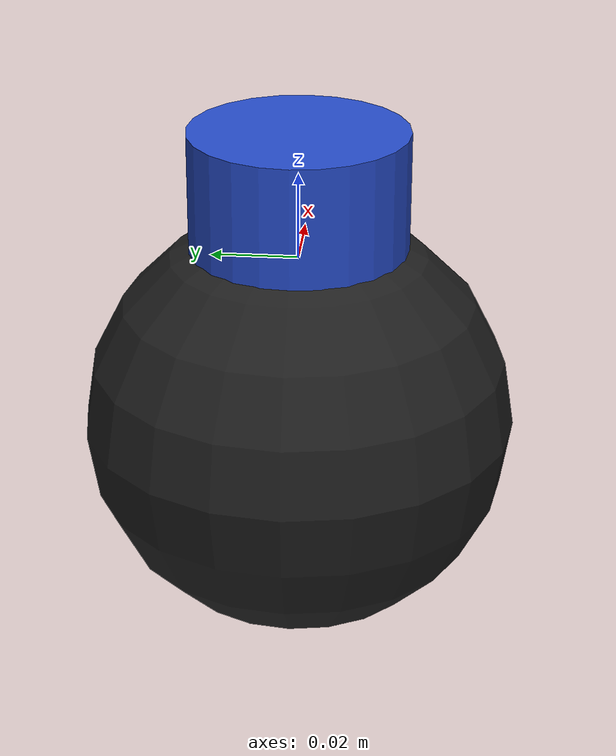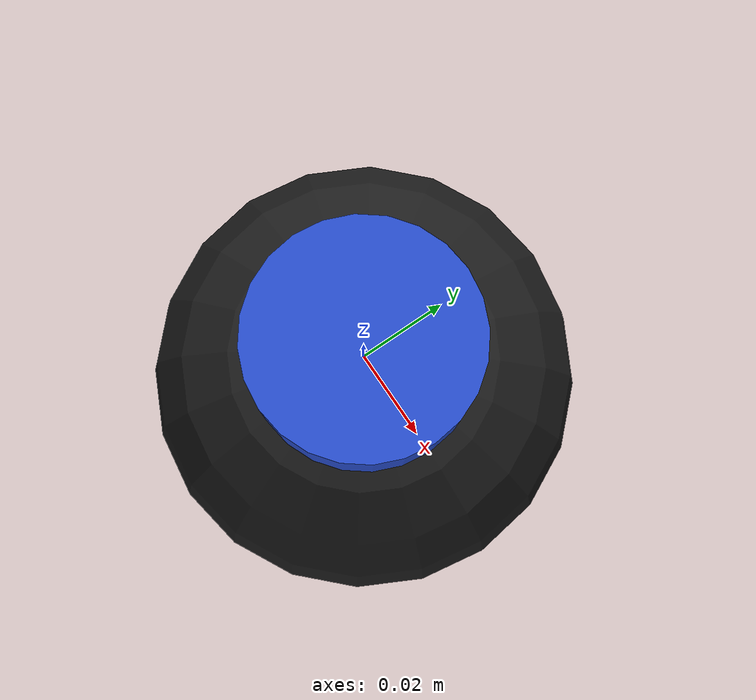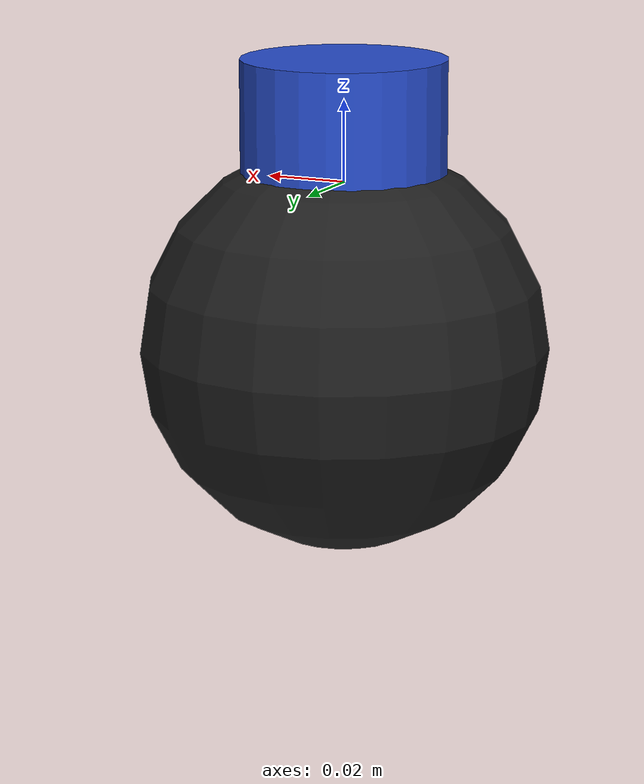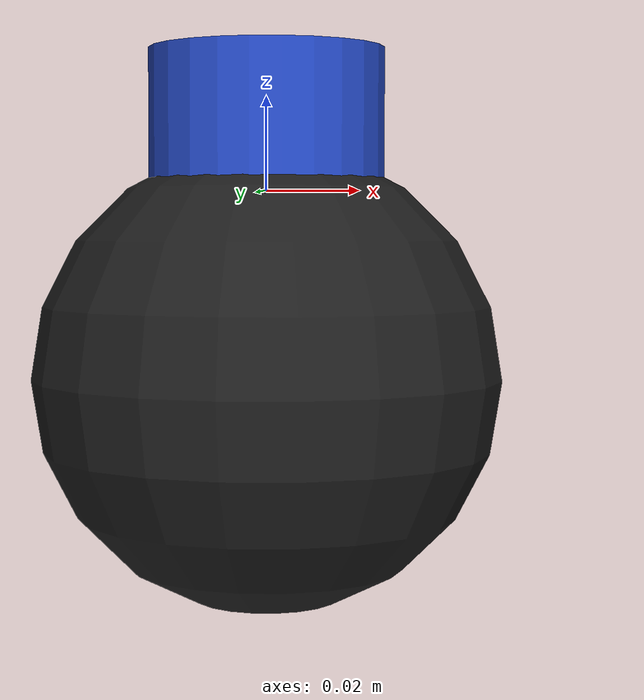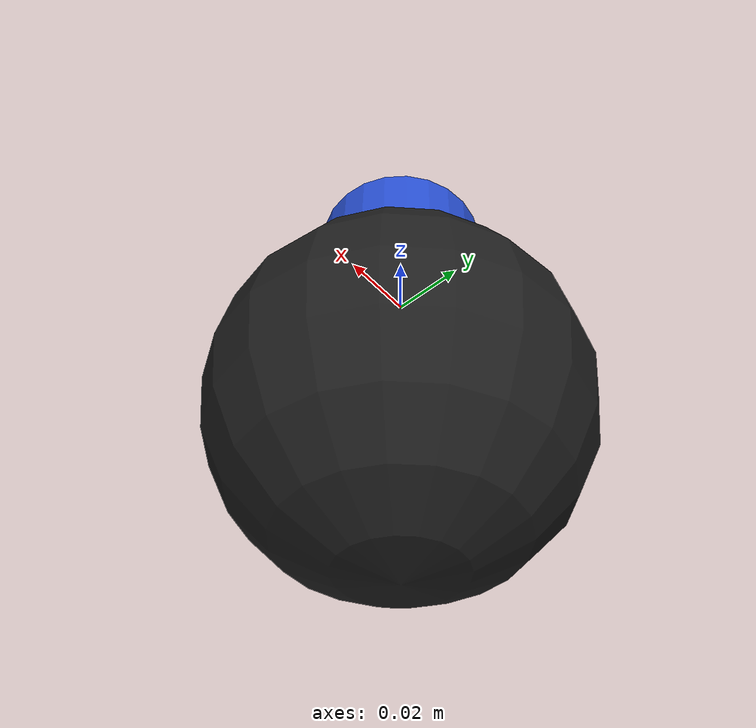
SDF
<?xml version='1.0'?>
<sdf version='1.6'>
  <model name='Head_Camera'>
    <link name='link_0'>
      <pose frame=''>0 0 -0.04 0 -0 0</pose>
      <inertial>
        <mass>0.01</mass>
        <inertia>
          <ixx>0</ixx>
          <ixy>0</ixy>
          <ixz>0</ixz>
          <iyy>0</iyy>
          <iyz>0</iyz>
          <izz>0</izz>
        </inertia>
        <pose frame=''>0 0 0 0 -0 0</pose>
      </inertial>
      <self_collide>0</self_collide>
      <kinematic>0</kinematic>
      <visual name='visual'>
        <pose frame=''>0 0 0 0 -0 0</pose>
        <geometry>
          <sphere>
            <radius>0.05</radius>
          </sphere>
        </geometry>
        <material>
          <lighting>1</lighting>
          <script>
            <uri>file://media/materials/scripts/gazebo.material</uri>
            <name>Gazebo/Black</name>
          </script>
          <shader type='pixel'>
            <normal_map>__default__</normal_map>
          </shader>
          <ambient>0 0 0 1</ambient>
          <diffuse>0 0 0 1</diffuse>
          <specular>0 0 0 1</specular>
          <emissive>0 0 0 1</emissive>
        </material>
        <transparency>0</transparency>
        <cast_shadows>1</cast_shadows>
      </visual>
      <collision name='collision'>
        <laser_retro>0</laser_retro>
        <max_contacts>10</max_contacts>
        <pose frame=''>0 0 0 0 -0 0</pose>
        <geometry>
          <sphere>
            <radius>0.05</radius>
          </sphere>
        </geometry>
        <surface>
          <friction>
            <ode>
              <mu>1</mu>
              <mu2>1</mu2>
              <fdir1>0 0 0</fdir1>
              <slip1>0</slip1>
              <slip2>0</slip2>
            </ode>
            <torsional>
              <coefficient>1</coefficient>
              <patch_radius>0</patch_radius>
              <surface_radius>0</surface_radius>
              <use_patch_radius>1</use_patch_radius>
              <ode>
                <slip>0</slip>
              </ode>
            </torsional>
          </friction>
          <bounce>
            <restitution_coefficient>0</restitution_coefficient>
            <threshold>1e+06</threshold>
          </bounce>
          <contact>
            <collide_without_contact>0</collide_without_contact>
            <collide_without_contact_bitmask>1</collide_without_contact_bitmask>
            <collide_bitmask>1</collide_bitmask>
            <ode>
              <soft_cfm>0</soft_cfm>
              <soft_erp>0.2</soft_erp>
              <kp>1e+13</kp>
              <kd>1</kd>
              <max_vel>0.01</max_vel>
              <min_depth>0</min_depth>
            </ode>
            <bullet>
              <split_impulse>1</split_impulse>
              <split_impulse_penetration_threshold>-0.01</split_impulse_penetration_threshold>
              <soft_cfm>0</soft_cfm>
              <soft_erp>0.2</soft_erp>
              <kp>1e+13</kp>
              <kd>1</kd>
            </bullet>
          </contact>
        </surface>
      </collision>
    </link>
    <link name='camera_link'>
      <pose frame=''>0 0 0.03 -3.14159 -1.57079 -3.14159</pose>
      <inertial>
        <mass>0.0001</mass>
        <inertia>
          <ixx>0</ixx>
          <ixy>0</ixy>
          <ixz>0</ixz>
          <iyy>0</iyy>
          <iyz>0</iyz>
          <izz>0</izz>
        </inertia>
        <pose frame=''>0 0 0 0 -0 0</pose>
      </inertial>
      <self_collide>0</self_collide>
      <kinematic>0</kinematic>
      <sensor name='head_cam' type='camera'>
        <update_rate>30</update_rate>
        <camera name='head'>
          <horizontal_fov>1.094321441</horizontal_fov> <!-- was 1.39626 -->   <!-- I stole of the HFOV of the Kinect -->
          <image>
            <width>1280</width>
            <height>720</height>
            <format>R8G8B8</format>
          </image>
          <clip>
            <near>0.02</near>
            <far>3</far>
          </clip>
          <noise>
            <type>gaussian</type>
            <mean>0</mean>
            <stddev>0.007</stddev>
          </noise>
        </camera>
        <plugin name='camera_controller' filename='libgazebo_ros_camera.so'>
          <alwaysOn>true</alwaysOn>
          <updateRate>0.0</updateRate>
          <cameraName>HeadCamera</cameraName>
          <imageTopicName>color/image_raw</imageTopicName>
          <cameraInfoTopicName>color/camera_info</cameraInfoTopicName>
          <frameName>camera_link</frameName>
          <hackBaseline>0.07</hackBaseline>
          <distortionK1>0.06726480494028904</distortionK1>
          <distortionK2>-0.182085548358466</distortionK2>
          <distortionK3>0.0</distortionK3>
          <distortionT1>0.002257675476788686</distortionT1>
          <distortionT2>-0.001822569121195646</distortionT2>
          <focalLength>1050.550444</focalLength>
        </plugin>
      </sensor>
      <gravity>1</gravity>
      <visual name='visual'>
        <pose frame=''>0 0 0 0 -0 0</pose>
        <geometry>
          <sphere>
            <radius>1e-06</radius>
          </sphere>
        </geometry>
        <material>
          <lighting>1</lighting>
          <script>
            <uri>file://media/materials/scripts/gazebo.material</uri>
            <name>Gazebo/Grey</name>
          </script>
          <shader type='pixel'>
            <normal_map>__default__</normal_map>
          </shader>
          <ambient>0.3 0.3 0.3 1</ambient>
          <diffuse>0.7 0.7 0.7 1</diffuse>
          <specular>0.01 0.01 0.01 1</specular>
          <emissive>0 0 0 1</emissive>
        </material>
        <transparency>0</transparency>
        <cast_shadows>1</cast_shadows>
      </visual>
      <collision name='collision'>
        <laser_retro>0</laser_retro>
        <max_contacts>10</max_contacts>
        <pose frame=''>0 0 0 0 -0 0</pose>
        <geometry>
          <sphere>
            <radius>1e-06</radius>
          </sphere>
        </geometry>
        <surface>
          <friction>
            <ode>
              <mu>1</mu>
              <mu2>1</mu2>
              <fdir1>0 0 0</fdir1>
              <slip1>0</slip1>
              <slip2>0</slip2>
            </ode>
            <torsional>
              <coefficient>1</coefficient>
              <patch_radius>0</patch_radius>
              <surface_radius>0</surface_radius>
              <use_patch_radius>1</use_patch_radius>
              <ode>
                <slip>0</slip>
              </ode>
            </torsional>
          </friction>
          <bounce>
            <restitution_coefficient>0</restitution_coefficient>
            <threshold>1e+06</threshold>
          </bounce>
          <contact>
            <collide_without_contact>0</collide_without_contact>
            <collide_without_contact_bitmask>1</collide_without_contact_bitmask>
            <collide_bitmask>1</collide_bitmask>
            <ode>
              <soft_cfm>0</soft_cfm>
              <soft_erp>0.2</soft_erp>
              <kp>1e+13</kp>
              <kd>1</kd>
              <max_vel>0.01</max_vel>
              <min_depth>0</min_depth>
            </ode>
            <bullet>
              <split_impulse>1</split_impulse>
              <split_impulse_penetration_threshold>-0.01</split_impulse_penetration_threshold>
              <soft_cfm>0</soft_cfm>
              <soft_erp>0.2</soft_erp>
              <kp>1e+13</kp>
              <kd>1</kd>
            </bullet>
          </contact>
        </surface>
      </collision>
    </link>
    <link name='link_1'>
      <pose frame=''>0 0 0.01 0 -0 0</pose>
      <inertial>
        <mass>0.005</mass>
        <inertia>
          <ixx>0</ixx>
          <ixy>0</ixy>
          <ixz>0</ixz>
          <iyy>0</iyy>
          <iyz>0</iyz>
          <izz>0</izz>
        </inertia>
        <pose frame=''>0 0 0 0 -0 0</pose>
      </inertial>
      <self_collide>0</self_collide>
      <kinematic>0</kinematic>
      <visual name='visual'>
        <pose frame=''>0 0 0 0 -0 0</pose>
        <geometry>
          <cylinder>
            <radius>0.025</radius>
            <length>0.04</length>
          </cylinder>
        </geometry>
        <material>
          <lighting>1</lighting>
          <script>
            <uri>file://media/materials/scripts/gazebo.material</uri>
            <name>Gazebo/Blue</name>
          </script>
          <shader type='pixel'>
            <normal_map>__default__</normal_map>
          </shader>
          <ambient>0 0 0.4 1</ambient>
          <diffuse>0 0 0.6 1</diffuse>
          <specular>0 0 0.1 1</specular>
          <emissive>0 0 0 1</emissive>
        </material>
        <transparency>0</transparency>
        <cast_shadows>1</cast_shadows>
      </visual>
      <collision name='collision'>
        <laser_retro>0</laser_retro>
        <max_contacts>10</max_contacts>
        <pose frame=''>0 0 0 0 -0 0</pose>
        <geometry>
          <cylinder>
            <radius>0.025</radius>
            <length>0.04</length>
          </cylinder>
        </geometry>
        <surface>
          <friction>
            <ode>
              <mu>1</mu>
              <mu2>1</mu2>
              <fdir1>0 0 0</fdir1>
              <slip1>0</slip1>
              <slip2>0</slip2>
            </ode>
            <torsional>
              <coefficient>1</coefficient>
              <patch_radius>0</patch_radius>
              <surface_radius>0</surface_radius>
              <use_patch_radius>1</use_patch_radius>
              <ode>
                <slip>0</slip>
              </ode>
            </torsional>
          </friction>
          <bounce>
            <restitution_coefficient>0</restitution_coefficient>
            <threshold>1e+06</threshold>
          </bounce>
          <contact>
            <collide_without_contact>0</collide_without_contact>
            <collide_without_contact_bitmask>1</collide_without_contact_bitmask>
            <collide_bitmask>1</collide_bitmask>
            <ode>
              <soft_cfm>0</soft_cfm>
              <soft_erp>0.2</soft_erp>
              <kp>1e+13</kp>
              <kd>1</kd>
              <max_vel>0.01</max_vel>
              <min_depth>0</min_depth>
            </ode>
            <bullet>
              <split_impulse>1</split_impulse>
              <split_impulse_penetration_threshold>-0.01</split_impulse_penetration_threshold>
              <soft_cfm>0</soft_cfm>
              <soft_erp>0.2</soft_erp>
              <kp>1e+13</kp>
              <kd>1</kd>
            </bullet>
          </contact>
        </surface>
      </collision>
    </link>
    <joint name='camera_link_JOINT_0' type='revolute'>
      <parent>camera_link</parent>
      <child>link_1</child>
      <pose frame=''>0 0 0 0 -0 0</pose>
      <axis>
        <xyz>0 0 1</xyz>
        <use_parent_model_frame>0</use_parent_model_frame>
        <limit>
          <lower>0</lower>
          <upper>0</upper>
          <effort>0</effort>
          <velocity>0</velocity>
        </limit>
        <dynamics>
          <spring_reference>0</spring_reference>
          <spring_stiffness>0</spring_stiffness>
          <damping>0</damping>
        </dynamics>
      </axis>
      <physics>
        <ode>
          <limit>
            <cfm>0</cfm>
            <erp>0.2</erp>
          </limit>
          <suspension>
            <cfm>0</cfm>
            <erp>0.2</erp>
          </suspension>
        </ode>
      </physics>
    </joint>
    <joint name='link_0_JOINT_0' type='revolute'>
      <parent>link_0</parent>
      <child>link_1</child>
      <pose frame=''>0 0 0 0 -0 0</pose>
      <axis>
        <xyz>0 0 1</xyz>
        <use_parent_model_frame>0</use_parent_model_frame>
        <limit>
          <lower>0</lower>
          <upper>0</upper>
          <effort>0</effort>
          <velocity>0</velocity>
        </limit>
        <dynamics>
          <spring_reference>0</spring_reference>
          <spring_stiffness>0</spring_stiffness>
          <damping>0</damping>
          <friction>0</friction>
        </dynamics>
      </axis>
      <physics>
        <ode>
          <limit>
            <cfm>0</cfm>
            <erp>0.2</erp>
          </limit>
          <suspension>
            <cfm>0</cfm>
            <erp>0.2</erp>
          </suspension>
        </ode>
      </physics>
    </joint>
    <static>1</static>
    <allow_auto_disable>1</allow_auto_disable>
  </model>
</sdf>
